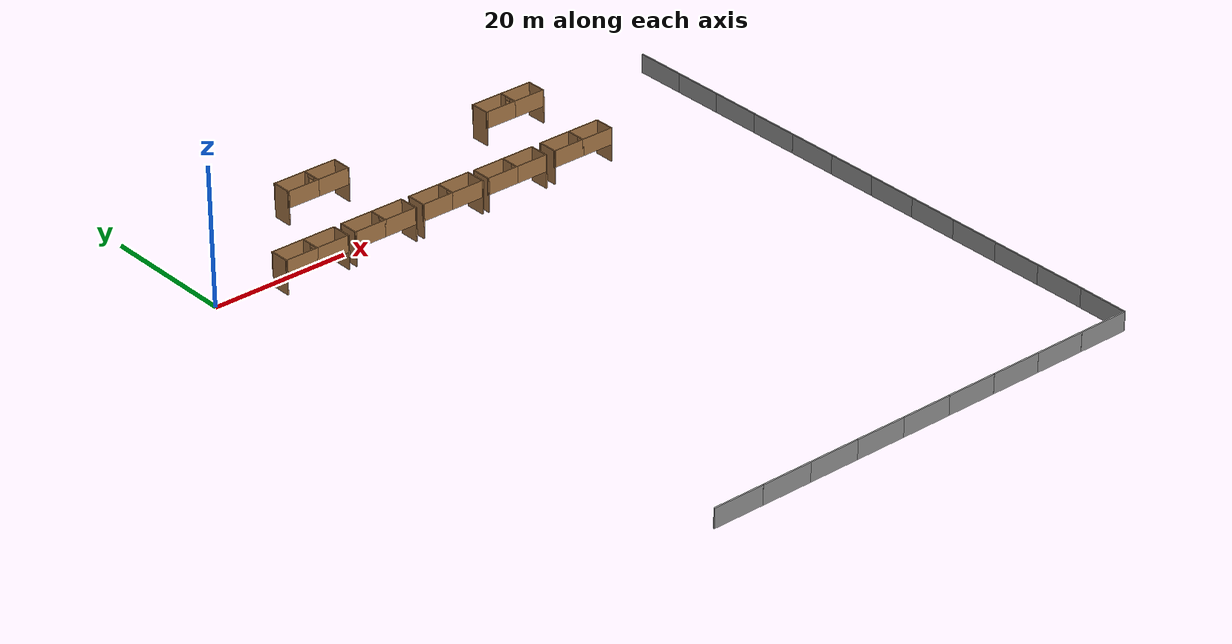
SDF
<sdf version="1.6">
 <world name="default">
  <model name="grey_wall_clone_10_clone_clone_clone_11_clone_clone_9">
   <static>1</static>
   <link name="link">
    <pose>0 0 1.4 0 -0 0</pose>
    <collision name="collision"><geometry><box><size>7.5 0.2 2.8</size></box></geometry></collision>
    <visual name="visual">
     <cast_shadows>0</cast_shadows>
     <geometry><box><size>7.5 0.2 2.8</size></box></geometry>
     <material>
      <script>
       <uri>model://forest/grey_wall/materials/scripts</uri>
       <uri>model://forest/grey_wall/materials/textures</uri>
       <name>vrc/grey_wall</name>
      </script>
     </material>
    </visual>
   </link>
   <pose>17.442 -77.2428 0 0 -0 0</pose>
  </model>
  <model name="grey_wall_clone_10_clone_clone_clone_11_clone_clone_10">
   <static>1</static>
   <link name="link">
    <pose>0 0 1.4 0 -0 0</pose>
    <collision name="collision"><geometry><box><size>7.5 0.2 2.8</size></box></geometry></collision>
    <visual name="visual">
     <cast_shadows>0</cast_shadows>
     <geometry><box><size>7.5 0.2 2.8</size></box></geometry>
     <material>
      <script>
       <uri>model://forest/grey_wall/materials/scripts</uri>
       <uri>model://forest/grey_wall/materials/textures</uri>
       <name>vrc/grey_wall</name>
      </script>
     </material>
    </visual>
   </link>
   <pose>24.9441 -77.2473 0 0 -0 0</pose>
  </model>
  <model name="grey_wall_clone_10_clone_clone_clone_11_clone_clone_11">
   <static>1</static>
   <link name="link">
    <pose>0 0 1.4 0 -0 0</pose>
    <collision name="collision"><geometry><box><size>7.5 0.2 2.8</size></box></geometry></collision>
    <visual name="visual">
     <cast_shadows>0</cast_shadows>
     <geometry><box><size>7.5 0.2 2.8</size></box></geometry>
     <material>
      <script>
       <uri>model://forest/grey_wall/materials/scripts</uri>
       <uri>model://forest/grey_wall/materials/textures</uri>
       <name>vrc/grey_wall</name>
      </script>
     </material>
    </visual>
   </link>
   <pose>32.4421 -77.2463 0 0 -0 0</pose>
  </model>
  <model name="grey_wall_clone_10_clone_clone_clone_11_clone_clone_12">
   <static>1</static>
   <link name="link">
    <pose>0 0 1.4 0 -0 0</pose>
    <collision name="collision"><geometry><box><size>7.5 0.2 2.8</size></box></geometry></collision>
    <visual name="visual">
     <cast_shadows>0</cast_shadows>
     <geometry><box><size>7.5 0.2 2.8</size></box></geometry>
     <material>
      <script>
       <uri>model://forest/grey_wall/materials/scripts</uri>
       <uri>model://forest/grey_wall/materials/textures</uri>
       <name>vrc/grey_wall</name>
      </script>
     </material>
    </visual>
   </link>
   <pose>39.9314 -77.2456 0 0 -0 0</pose>
  </model>
  <model name="grey_wall_clone_10_clone_clone_clone_11_clone_clone_13">
   <static>1</static>
   <link name="link">
    <pose>0 0 1.4 0 -0 0</pose>
    <collision name="collision"><geometry><box><size>7.5 0.2 2.8</size></box></geometry></collision>
    <visual name="visual">
     <cast_shadows>0</cast_shadows>
     <geometry><box><size>7.5 0.2 2.8</size></box></geometry>
     <material>
      <script>
       <uri>model://forest/grey_wall/materials/scripts</uri>
       <uri>model://forest/grey_wall/materials/textures</uri>
       <name>vrc/grey_wall</name>
      </script>
     </material>
    </visual>
   </link>
   <pose>47.429 -77.2489 0 0 -0 0</pose>
  </model>
  <model name="grey_wall_clone_10_clone_clone_clone_11_clone_clone_14">
   <static>1</static>
   <link name="link">
    <pose>0 0 1.4 0 -0 0</pose>
    <collision name="collision"><geometry><box><size>7.5 0.2 2.8</size></box></geometry></collision>
    <visual name="visual">
     <cast_shadows>0</cast_shadows>
     <geometry><box><size>7.5 0.2 2.8</size></box></geometry>
     <material>
      <script>
       <uri>model://forest/grey_wall/materials/scripts</uri>
       <uri>model://forest/grey_wall/materials/textures</uri>
       <name>vrc/grey_wall</name>
      </script>
     </material>
    </visual>
   </link>
   <pose>54.8935 -77.2438 0 0 -0 0</pose>
  </model>
  <model name="grey_wall_clone_10_clone_clone_clone_11_clone_clone_15">
   <static>1</static>
   <link name="link">
    <pose>0 0 1.4 0 -0 0</pose>
    <collision name="collision"><geometry><box><size>7.5 0.2 2.8</size></box></geometry></collision>
    <visual name="visual">
     <cast_shadows>0</cast_shadows>
     <geometry><box><size>7.5 0.2 2.8</size></box></geometry>
     <material>
      <script>
       <uri>model://forest/grey_wall/materials/scripts</uri>
       <uri>model://forest/grey_wall/materials/textures</uri>
       <name>vrc/grey_wall</name>
      </script>
     </material>
    </visual>
   </link>
   <pose>62.4043 -77.2429 0 0 -0 0</pose>
  </model>
  <model name="grey_wall_clone_10_clone_clone_clone_11_clone_clone_16">
   <static>1</static>
   <link name="link">
    <pose>0 0 1.4 0 -0 0</pose>
    <collision name="collision"><geometry><box><size>7.5 0.2 2.8</size></box></geometry></collision>
    <visual name="visual">
     <cast_shadows>0</cast_shadows>
     <geometry><box><size>7.5 0.2 2.8</size></box></geometry>
     <material>
      <script>
       <uri>model://forest/grey_wall/materials/scripts</uri>
       <uri>model://forest/grey_wall/materials/textures</uri>
       <name>vrc/grey_wall</name>
      </script>
     </material>
    </visual>
   </link>
   <pose>69.8968 -77.2494 0 0 -0 0</pose>
  </model>
  <model name="grey_wall_clone_10_clone_clone_clone_11_clone_clone_17">
   <static>1</static>
   <link name="link">
    <pose>0 0 1.4 0 -0 0</pose>
    <collision name="collision"><geometry><box><size>7.5 0.2 2.8</size></box></geometry></collision>
    <visual name="visual">
     <cast_shadows>0</cast_shadows>
     <geometry><box><size>7.5 0.2 2.8</size></box></geometry>
     <material>
      <script>
       <uri>model://forest/grey_wall/materials/scripts</uri>
       <uri>model://forest/grey_wall/materials/textures</uri>
       <name>vrc/grey_wall</name>
      </script>
     </material>
    </visual>
   </link>
   <pose>77.4066 -77.2521 0 0 -0 0</pose>
  </model>
  <model name="grey_wall_clone_10_clone_0_clone_11_clone">
   <static>1</static>
   <link name="link">
    <pose>0 0 1.4 0 -0 0</pose>
    <collision name="collision"><geometry><box><size>7.5 0.2 2.8</size></box></geometry></collision>
    <visual name="visual">
     <cast_shadows>0</cast_shadows>
     <geometry><box><size>7.5 0.2 2.8</size></box></geometry>
     <material>
      <script>
       <uri>model://forest/grey_wall/materials/scripts</uri>
       <uri>model://forest/grey_wall/materials/textures</uri>
       <name>vrc/grey_wall</name>
      </script>
     </material>
    </visual>
   </link>
   <pose>81.2442 -73.5802 0 0 0 -1.5802</pose>
  </model>
  <model name="grey_wall_clone_10_clone_0_clone_10_clone">
   <static>1</static>
   <link name="link">
    <pose>0 0 1.4 0 -0 0</pose>
    <collision name="collision"><geometry><box><size>7.5 0.2 2.8</size></box></geometry></collision>
    <visual name="visual">
     <cast_shadows>0</cast_shadows>
     <geometry><box><size>7.5 0.2 2.8</size></box></geometry>
     <material>
      <script>
       <uri>model://forest/grey_wall/materials/scripts</uri>
       <uri>model://forest/grey_wall/materials/textures</uri>
       <name>vrc/grey_wall</name>
      </script>
     </material>
    </visual>
   </link>
   <pose>81.3001 -66.0858 0 0 0 -1.56932</pose>
  </model>
  <model name="grey_wall_clone_10_clone_0_clone_9_clone">
   <static>1</static>
   <link name="link">
    <pose>0 0 1.4 0 -0 0</pose>
    <collision name="collision"><geometry><box><size>7.5 0.2 2.8</size></box></geometry></collision>
    <visual name="visual">
     <cast_shadows>0</cast_shadows>
     <geometry><box><size>7.5 0.2 2.8</size></box></geometry>
     <material>
      <script>
       <uri>model://forest/grey_wall/materials/scripts</uri>
       <uri>model://forest/grey_wall/materials/textures</uri>
       <name>vrc/grey_wall</name>
      </script>
     </material>
    </visual>
   </link>
   <pose>81.2777 -58.6142 0 0 0 -1.56932</pose>
  </model>
  <model name="grey_wall_clone_10_clone_0_clone_8_clone">
   <static>1</static>
   <link name="link">
    <pose>0 0 1.4 0 -0 0</pose>
    <collision name="collision"><geometry><box><size>7.5 0.2 2.8</size></box></geometry></collision>
    <visual name="visual">
     <cast_shadows>0</cast_shadows>
     <geometry><box><size>7.5 0.2 2.8</size></box></geometry>
     <material>
      <script>
       <uri>model://forest/grey_wall/materials/scripts</uri>
       <uri>model://forest/grey_wall/materials/textures</uri>
       <name>vrc/grey_wall</name>
      </script>
     </material>
    </visual>
   </link>
   <pose>81.2777 -51.1177 0 0 0 -1.56932</pose>
  </model>
  <model name="grey_wall_clone_10_clone_0_clone_7_clone">
   <static>1</static>
   <link name="link">
    <pose>0 0 1.4 0 -0 0</pose>
    <collision name="collision"><geometry><box><size>7.5 0.2 2.8</size></box></geometry></collision>
    <visual name="visual">
     <cast_shadows>0</cast_shadows>
     <geometry><box><size>7.5 0.2 2.8</size></box></geometry>
     <material>
      <script>
       <uri>model://forest/grey_wall/materials/scripts</uri>
       <uri>model://forest/grey_wall/materials/textures</uri>
       <name>vrc/grey_wall</name>
      </script>
     </material>
    </visual>
   </link>
   <pose>81.2788 -43.6064 0 0 0 -1.56932</pose>
  </model>
  <model name="grey_wall_clone_10_clone_0_clone_6_clone">
   <static>1</static>
   <link name="link">
    <pose>0 0 1.4 0 -0 0</pose>
    <collision name="collision"><geometry><box><size>7.5 0.2 2.8</size></box></geometry></collision>
    <visual name="visual">
     <cast_shadows>0</cast_shadows>
     <geometry><box><size>7.5 0.2 2.8</size></box></geometry>
     <material>
      <script>
       <uri>model://forest/grey_wall/materials/scripts</uri>
       <uri>model://forest/grey_wall/materials/textures</uri>
       <name>vrc/grey_wall</name>
      </script>
     </material>
    </visual>
   </link>
   <pose>81.2767 -36.0958 0 0 0 -1.56932</pose>
  </model>
  <model name="grey_wall_clone_10_clone_0_clone_5_clone_13">
   <static>1</static>
   <link name="link">
    <pose>0 0 1.4 0 -0 0</pose>
    <collision name="collision"><geometry><box><size>7.5 0.2 2.8</size></box></geometry></collision>
    <visual name="visual">
     <cast_shadows>0</cast_shadows>
     <geometry><box><size>7.5 0.2 2.8</size></box></geometry>
     <material>
      <script>
       <uri>model://forest/grey_wall/materials/scripts</uri>
       <uri>model://forest/grey_wall/materials/textures</uri>
       <name>vrc/grey_wall</name>
      </script>
     </material>
    </visual>
   </link>
   <pose>81.2728 -28.5811 0 0 0 -1.56932</pose>
  </model>
  <model name="grey_wall_clone_10_clone_0_clone_4_clone">
   <static>1</static>
   <link name="link">
    <pose>0 0 1.4 0 -0 0</pose>
    <collision name="collision"><geometry><box><size>7.5 0.2 2.8</size></box></geometry></collision>
    <visual name="visual">
     <cast_shadows>0</cast_shadows>
     <geometry><box><size>7.5 0.2 2.8</size></box></geometry>
     <material>
      <script>
       <uri>model://forest/grey_wall/materials/scripts</uri>
       <uri>model://forest/grey_wall/materials/textures</uri>
       <name>vrc/grey_wall</name>
      </script>
     </material>
    </visual>
   </link>
   <pose>81.2736 -21.0806 0 0 0 -1.56932</pose>
  </model>
  <model name="grey_wall_clone_10_clone_0_clone_3_clone">
   <static>1</static>
   <link name="link">
    <pose>0 0 1.4 0 -0 0</pose>
    <collision name="collision"><geometry><box><size>7.5 0.2 2.8</size></box></geometry></collision>
    <visual name="visual">
     <cast_shadows>0</cast_shadows>
     <geometry><box><size>7.5 0.2 2.8</size></box></geometry>
     <material>
      <script>
       <uri>model://forest/grey_wall/materials/scripts</uri>
       <uri>model://forest/grey_wall/materials/textures</uri>
       <name>vrc/grey_wall</name>
      </script>
     </material>
    </visual>
   </link>
   <pose>81.2554 -13.5842 0 0 0 -1.56932</pose>
  </model>
  <model name="grey_wall_clone_10_clone_0_clone_2_clone">
   <static>1</static>
   <link name="link">
    <pose>0 0 1.4 0 -0 0</pose>
    <collision name="collision"><geometry><box><size>7.5 0.2 2.8</size></box></geometry></collision>
    <visual name="visual">
     <cast_shadows>0</cast_shadows>
     <geometry><box><size>7.5 0.2 2.8</size></box></geometry>
     <material>
      <script>
       <uri>model://forest/grey_wall/materials/scripts</uri>
       <uri>model://forest/grey_wall/materials/textures</uri>
       <name>vrc/grey_wall</name>
      </script>
     </material>
    </visual>
   </link>
   <pose>81.262 -6.06923 0 0 0 -1.56932</pose>
  </model>
  <model name="grey_wall_clone_10_clone_0_clone_1_clone">
   <static>1</static>
   <link name="link">
    <pose>0 0 1.4 0 -0 0</pose>
    <collision name="collision"><geometry><box><size>7.5 0.2 2.8</size></box></geometry></collision>
    <visual name="visual">
     <cast_shadows>0</cast_shadows>
     <geometry><box><size>7.5 0.2 2.8</size></box></geometry>
     <material>
      <script>
       <uri>model://forest/grey_wall/materials/scripts</uri>
       <uri>model://forest/grey_wall/materials/textures</uri>
       <name>vrc/grey_wall</name>
      </script>
     </material>
    </visual>
   </link>
   <pose>81.2538 1.43804 0 0 0 -1.56932</pose>
  </model>
  <model name="grey_wall_clone_10_clone_0_clone_0_clone">
   <static>1</static>
   <link name="link">
    <pose>0 0 1.4 0 -0 0</pose>
    <collision name="collision"><geometry><box><size>7.5 0.2 2.8</size></box></geometry></collision>
    <visual name="visual">
     <cast_shadows>0</cast_shadows>
     <geometry><box><size>7.5 0.2 2.8</size></box></geometry>
     <material>
      <script>
       <uri>model://forest/grey_wall/materials/scripts</uri>
       <uri>model://forest/grey_wall/materials/textures</uri>
       <name>vrc/grey_wall</name>
      </script>
     </material>
    </visual>
   </link>
   <pose>81.2487 8.94341 0 0 0 -1.56932</pose>
  </model>
  <model name="right130_0">
   <pose>15.9595 1.93202 0 0 -0 0</pose>
   <link name="Wall_11">
    <collision name="Wall_11_Collision">
     <geometry><box><size>5 0.15 2.5</size></box></geometry>
     <pose>0 0 1.25 0 -0 0</pose>
    </collision>
    <visual name="Wall_11_Visual">
     <pose>0 0 1.25 0 -0 0</pose>
     <geometry><box><size>5 0.15 2.5</size></box></geometry>
     <material>
      <script><uri>file://media/materials/scripts/gazebo.material</uri><name>Gazebo/Wood</name></script>
      <ambient>1 1 1 1</ambient>
     </material>
     <meta><layer>0</layer></meta>
    </visual>
    <pose>-2.425 -1.83058 0 0 -0 3.14159</pose>
   </link>
   <link name="Wall_5">
    <collision name="Wall_5_Collision">
     <geometry><box><size>5 0.15 2.5</size></box></geometry>
     <pose>0 0 1.25 0 -0 0</pose>
    </collision>
    <visual name="Wall_5_Visual">
     <pose>0 0 1.25 0 -0 0</pose>
     <geometry><box><size>5 0.15 2.5</size></box></geometry>
     <material>
      <script><uri>file://media/materials/scripts/gazebo.material</uri><name>Gazebo/Wood</name></script>
      <ambient>1 1 1 1</ambient>
     </material>
     <meta><layer>0</layer></meta>
    </visual>
    <pose>-2.425 1.01942 0 0 -0 0</pose>
   </link>
   <link name="Wall_6">
    <pose>0 -0.405576 0 0 -0 -1.5708</pose>
    <visual name="Wall_6_Visual_0">
     <pose>-0.7275 0 1.25 0 -0 0</pose>
     <geometry><box><size>1.545 0.15 2.5</size></box></geometry>
     <material>
      <script><uri>file://media/materials/scripts/gazebo.material</uri><name>Gazebo/Wood</name></script>
      <ambient>1 1 1 1</ambient>
     </material>
     <meta><layer>0</layer></meta>
    </visual>
    <collision name="Wall_6_Collision_0">
     <geometry><box><size>1.545 0.15 2.5</size></box></geometry>
     <pose>-0.7275 0 1.25 0 -0 0</pose>
    </collision>
    <visual name="Wall_6_Visual_1">
     <pose>1.4225 0 1.25 0 -0 0</pose>
     <geometry><box><size>0.155 0.15 2.5</size></box></geometry>
     <material>
      <script><uri>file://media/materials/scripts/gazebo.material</uri><name>Gazebo/Wood</name></script>
      <ambient>1 1 1 1</ambient>
     </material>
     <meta><layer>0</layer></meta>
    </visual>
    <collision name="Wall_6_Collision_1">
     <geometry><box><size>0.155 0.15 2.5</size></box></geometry>
     <pose>1.4225 0 1.25 0 -0 0</pose>
    </collision>
    <visual name="Wall_6_Visual_2">
     <pose>0.695 0 2.25 0 -0 0</pose>
     <geometry><box><size>1.3 0.15 0.5</size></box></geometry>
     <material>
      <script><uri>file://media/materials/scripts/gazebo.material</uri><name>Gazebo/Wood</name></script>
      <ambient>1 1 1 1</ambient>
     </material>
     <meta><layer>0</layer></meta>
    </visual>
    <collision name="Wall_6_Collision_2">
     <geometry><box><size>1.3 0.15 0.5</size></box></geometry>
     <pose>0.695 0 2.25 0 -0 0</pose>
    </collision>
   </link>
   <link name="Wall_7">
    <collision name="Wall_7_Collision">
     <geometry><box><size>5 0.15 2.5</size></box></geometry>
     <pose>0 0 1.25 0 -0 0</pose>
    </collision>
    <visual name="Wall_7_Visual">
     <pose>0 0 1.25 0 -0 0</pose>
     <geometry><box><size>5 0.15 2.5</size></box></geometry>
     <material>
      <script><uri>file://media/materials/scripts/gazebo.material</uri><name>Gazebo/Wood</name></script>
      <ambient>1 1 1 1</ambient>
     </material>
     <meta><layer>0</layer></meta>
    </visual>
    <pose>2.425 -1.83058 0 0 -0 0</pose>
   </link>
   <link name="Wall_9">
    <collision name="Wall_9_Collision">
     <geometry><box><size>5 0.15 2.5</size></box></geometry>
     <pose>0 0 1.25 0 -0 0</pose>
    </collision>
    <visual name="Wall_9_Visual">
     <pose>0 0 1.25 0 -0 0</pose>
     <geometry><box><size>5 0.15 2.5</size></box></geometry>
     <material>
      <script><uri>file://media/materials/scripts/gazebo.material</uri><name>Gazebo/Wood</name></script>
      <ambient>1 1 1 1</ambient>
     </material>
     <meta><layer>0</layer></meta>
    </visual>
    <pose>2.425 1.01942 0 0 -0 0</pose>
   </link>
   <link name="Wall_10">
    <collision name="Wall_10_Collision">
     <geometry><box><size>0.15 3 5</size></box></geometry>
     <pose>-7.25 -1.5 0 0 -0 0</pose>
    </collision>
    <visual name="Wall_10_Visual">
     <pose>-7.25 -1.5 0 0 -0 0</pose>
     <geometry><box><size>0.15 3 5</size></box></geometry>
     <material>
      <script><uri>file://media/materials/scripts/gazebo.material</uri><name>Gazebo/Wood</name></script>
      <ambient>1 1 1 1</ambient>
     </material>
     <meta><layer>0</layer></meta>
    </visual>
    <pose>2.425 1.01942 0 0 -0 0</pose>
   </link>
   <link name="Wall_12">
    <collision name="Wall_12_Collision">
     <geometry><box><size>0.15 3 5</size></box></geometry>
     <pose>2.5 -1.5 0 0 -0 0</pose>
    </collision>
    <visual name="Wall_12_Visual">
     <pose>2.5 -1.5 0 0 -0 0</pose>
     <geometry><box><size>0.15 3 5</size></box></geometry>
     <material>
      <script><uri>file://media/materials/scripts/gazebo.material</uri><name>Gazebo/Wood</name></script>
      <ambient>1 1 1 1</ambient>
     </material>
     <meta><layer>0</layer></meta>
    </visual>
    <pose>2.425 1.01942 0 0 -0 0</pose>
   </link>
   <static>1</static>
  </model>
  <model name="right120_0">
   <pose>26.8992 1.96176 0 0 -0 0</pose>
   <link name="Wall_11">
    <collision name="Wall_11_Collision">
     <geometry><box><size>5 0.15 2.5</size></box></geometry>
     <pose>0 0 1.25 0 -0 0</pose>
    </collision>
    <visual name="Wall_11_Visual">
     <pose>0 0 1.25 0 -0 0</pose>
     <geometry><box><size>5 0.15 2.5</size></box></geometry>
     <material>
      <script><uri>file://media/materials/scripts/gazebo.material</uri><name>Gazebo/Wood</name></script>
      <ambient>1 1 1 1</ambient>
     </material>
     <meta><layer>0</layer></meta>
    </visual>
    <pose>-2.425 -1.83058 0 0 -0 3.14159</pose>
   </link>
   <link name="Wall_5">
    <collision name="Wall_5_Collision">
     <geometry><box><size>5 0.15 2.5</size></box></geometry>
     <pose>0 0 1.25 0 -0 0</pose>
    </collision>
    <visual name="Wall_5_Visual">
     <pose>0 0 1.25 0 -0 0</pose>
     <geometry><box><size>5 0.15 2.5</size></box></geometry>
     <material>
      <script><uri>file://media/materials/scripts/gazebo.material</uri><name>Gazebo/Wood</name></script>
      <ambient>1 1 1 1</ambient>
     </material>
     <meta><layer>0</layer></meta>
    </visual>
    <pose>-2.425 1.01942 0 0 -0 0</pose>
   </link>
   <link name="Wall_6">
    <pose>0 -0.405576 0 0 -0 -1.5708</pose>
    <visual name="Wall_6_Visual_0">
     <pose>-0.6725 0 1.25 0 -0 0</pose>
     <geometry><box><size>1.655 0.15 2.5</size></box></geometry>
     <material>
      <script><uri>file://media/materials/scripts/gazebo.material</uri><name>Gazebo/Wood</name></script>
      <ambient>1 1 1 1</ambient>
     </material>
     <meta><layer>0</layer></meta>
    </visual>
    <collision name="Wall_6_Collision_0">
     <geometry><box><size>1.655 0.15 2.5</size></box></geometry>
     <pose>-0.6725 0 1.25 0 -0 0</pose>
    </collision>
    <visual name="Wall_6_Visual_1">
     <pose>1.4275 0 1.25 0 -0 0</pose>
     <geometry><box><size>0.145 0.15 2.5</size></box></geometry>
     <material>
      <script><uri>file://media/materials/scripts/gazebo.material</uri><name>Gazebo/Wood</name></script>
      <ambient>1 1 1 1</ambient>
     </material>
     <meta><layer>0</layer></meta>
    </visual>
    <collision name="Wall_6_Collision_1">
     <geometry><box><size>0.145 0.15 2.5</size></box></geometry>
     <pose>1.4275 0 1.25 0 -0 0</pose>
    </collision>
    <visual name="Wall_6_Visual_2">
     <pose>0.755 0 2.25 0 -0 0</pose>
     <geometry><box><size>1.2 0.15 0.5</size></box></geometry>
     <material>
      <script><uri>file://media/materials/scripts/gazebo.material</uri><name>Gazebo/Wood</name></script>
      <ambient>1 1 1 1</ambient>
     </material>
     <meta><layer>0</layer></meta>
    </visual>
    <collision name="Wall_6_Collision_2">
     <geometry><box><size>1.2 0.15 0.5</size></box></geometry>
     <pose>0.755 0 2.25 0 -0 0</pose>
    </collision>
   </link>
   <link name="Wall_7">
    <collision name="Wall_7_Collision">
     <geometry><box><size>5 0.15 2.5</size></box></geometry>
     <pose>0 0 1.25 0 -0 0</pose>
    </collision>
    <visual name="Wall_7_Visual">
     <pose>0 0 1.25 0 -0 0</pose>
     <geometry><box><size>5 0.15 2.5</size></box></geometry>
     <material>
      <script><uri>file://media/materials/scripts/gazebo.material</uri><name>Gazebo/Wood</name></script>
      <ambient>1 1 1 1</ambient>
     </material>
     <meta><layer>0</layer></meta>
    </visual>
    <pose>2.425 -1.83058 0 0 -0 0</pose>
   </link>
   <link name="Wall_9">
    <collision name="Wall_9_Collision">
     <geometry><box><size>5 0.15 2.5</size></box></geometry>
     <pose>0 0 1.25 0 -0 0</pose>
    </collision>
    <visual name="Wall_9_Visual">
     <pose>0 0 1.25 0 -0 0</pose>
     <geometry><box><size>5 0.15 2.5</size></box></geometry>
     <material>
      <script><uri>file://media/materials/scripts/gazebo.material</uri><name>Gazebo/Wood</name></script>
      <ambient>1 1 1 1</ambient>
     </material>
     <meta><layer>0</layer></meta>
    </visual>
    <pose>2.425 1.01942 0 0 -0 0</pose>
   </link>
   <link name="Wall_10">
    <collision name="Wall_10_Collision">
     <geometry><box><size>0.15 3 5</size></box></geometry>
     <pose>-7.25 -1.5 0 0 -0 0</pose>
    </collision>
    <visual name="Wall_10_Visual">
     <pose>-7.25 -1.5 0 0 -0 0</pose>
     <geometry><box><size>0.15 3 5</size></box></geometry>
     <material>
      <script><uri>file://media/materials/scripts/gazebo.material</uri><name>Gazebo/Wood</name></script>
      <ambient>1 1 1 1</ambient>
     </material>
     <meta><layer>0</layer></meta>
    </visual>
    <pose>2.425 1.01942 0 0 -0 0</pose>
   </link>
   <link name="Wall_12">
    <collision name="Wall_12_Collision">
     <geometry><box><size>0.15 3 5</size></box></geometry>
     <pose>2.5 -1.5 0 0 -0 0</pose>
    </collision>
    <visual name="Wall_12_Visual">
     <pose>2.5 -1.5 0 0 -0 0</pose>
     <geometry><box><size>0.15 3 5</size></box></geometry>
     <material>
      <script><uri>file://media/materials/scripts/gazebo.material</uri><name>Gazebo/Wood</name></script>
      <ambient>1 1 1 1</ambient>
     </material>
     <meta><layer>0</layer></meta>
    </visual>
    <pose>2.425 1.01942 0 0 -0 0</pose>
   </link>
   <static>1</static>
  </model>
  <model name="right110_0">
   <pose>37.8416 1.89566 0 0 -0 0</pose>
   <link name="Wall_11">
    <collision name="Wall_11_Collision">
     <geometry><box><size>5 0.15 2.5</size></box></geometry>
     <pose>0 0 1.25 0 -0 0</pose>
    </collision>
    <visual name="Wall_11_Visual">
     <pose>0 0 1.25 0 -0 0</pose>
     <geometry><box><size>5 0.15 2.5</size></box></geometry>
     <material>
      <script><uri>file://media/materials/scripts/gazebo.material</uri><name>Gazebo/Wood</name></script>
      <ambient>1 1 1 1</ambient>
     </material>
     <meta><layer>0</layer></meta>
    </visual>
    <pose>-2.425 -1.83058 0 0 -0 3.14159</pose>
   </link>
   <link name="Wall_5">
    <collision name="Wall_5_Collision">
     <geometry><box><size>5 0.15 2.5</size></box></geometry>
     <pose>0 0 1.25 0 -0 0</pose>
    </collision>
    <visual name="Wall_5_Visual">
     <pose>0 0 1.25 0 -0 0</pose>
     <geometry><box><size>5 0.15 2.5</size></box></geometry>
     <material>
      <script><uri>file://media/materials/scripts/gazebo.material</uri><name>Gazebo/Wood</name></script>
      <ambient>1 1 1 1</ambient>
     </material>
     <meta><layer>0</layer></meta>
    </visual>
    <pose>-2.425 1.01942 0 0 -0 0</pose>
   </link>
   <link name="Wall_6">
    <pose>0 -0.405576 0 0 -0 -1.5708</pose>
    <visual name="Wall_6_Visual_0">
     <pose>-0.6225 0 1.25 0 -0 0</pose>
     <geometry><box><size>1.755 0.15 2.5</size></box></geometry>
     <material>
      <script><uri>file://media/materials/scripts/gazebo.material</uri><name>Gazebo/Wood</name></script>
      <ambient>1 1 1 1</ambient>
     </material>
     <meta><layer>0</layer></meta>
    </visual>
    <collision name="Wall_6_Collision_0">
     <geometry><box><size>1.755 0.15 2.5</size></box></geometry>
     <pose>-0.6225 0 1.25 0 -0 0</pose>
    </collision>
    <visual name="Wall_6_Visual_1">
     <pose>1.4275 0 1.25 0 -0 0</pose>
     <geometry><box><size>0.145 0.15 2.5</size></box></geometry>
     <material>
      <script><uri>file://media/materials/scripts/gazebo.material</uri><name>Gazebo/Wood</name></script>
      <ambient>1 1 1 1</ambient>
     </material>
     <meta><layer>0</layer></meta>
    </visual>
    <collision name="Wall_6_Collision_1">
     <geometry><box><size>0.145 0.15 2.5</size></box></geometry>
     <pose>1.4275 0 1.25 0 -0 0</pose>
    </collision>
    <visual name="Wall_6_Visual_2">
     <pose>0.805 0 2.25 0 -0 0</pose>
     <geometry><box><size>1.1 0.15 0.5</size></box></geometry>
     <material>
      <script><uri>file://media/materials/scripts/gazebo.material</uri><name>Gazebo/Wood</name></script>
      <ambient>1 1 1 1</ambient>
     </material>
     <meta><layer>0</layer></meta>
    </visual>
    <collision name="Wall_6_Collision_2">
     <geometry><box><size>1.1 0.15 0.5</size></box></geometry>
     <pose>0.805 0 2.25 0 -0 0</pose>
    </collision>
   </link>
   <link name="Wall_7">
    <collision name="Wall_7_Collision">
     <geometry><box><size>5 0.15 2.5</size></box></geometry>
     <pose>0 0 1.25 0 -0 0</pose>
    </collision>
    <visual name="Wall_7_Visual">
     <pose>0 0 1.25 0 -0 0</pose>
     <geometry><box><size>5 0.15 2.5</size></box></geometry>
     <material>
      <script><uri>file://media/materials/scripts/gazebo.material</uri><name>Gazebo/Wood</name></script>
      <ambient>1 1 1 1</ambient>
     </material>
     <meta><layer>0</layer></meta>
    </visual>
    <pose>2.425 -1.83058 0 0 -0 0</pose>
   </link>
   <link name="Wall_9">
    <collision name="Wall_9_Collision">
     <geometry><box><size>5 0.15 2.5</size></box></geometry>
     <pose>0 0 1.25 0 -0 0</pose>
    </collision>
    <visual name="Wall_9_Visual">
     <pose>0 0 1.25 0 -0 0</pose>
     <geometry><box><size>5 0.15 2.5</size></box></geometry>
     <material>
      <script><uri>file://media/materials/scripts/gazebo.material</uri><name>Gazebo/Wood</name></script>
      <ambient>1 1 1 1</ambient>
     </material>
     <meta><layer>0</layer></meta>
    </visual>
    <pose>2.425 1.01942 0 0 -0 0</pose>
   </link>
   <link name="Wall_10">
    <collision name="Wall_10_Collision">
     <geometry><box><size>0.15 3 5</size></box></geometry>
     <pose>-7.25 -1.5 0 0 -0 0</pose>
    </collision>
    <visual name="Wall_10_Visual">
     <pose>-7.25 -1.5 0 0 -0 0</pose>
     <geometry><box><size>0.15 3 5</size></box></geometry>
     <material>
      <script><uri>file://media/materials/scripts/gazebo.material</uri><name>Gazebo/Wood</name></script>
      <ambient>1 1 1 1</ambient>
     </material>
     <meta><layer>0</layer></meta>
    </visual>
    <pose>2.425 1.01942 0 0 -0 0</pose>
   </link>
   <link name="Wall_12">
    <collision name="Wall_12_Collision">
     <geometry><box><size>0.15 3 5</size></box></geometry>
     <pose>2.5 -1.5 0 0 -0 0</pose>
    </collision>
    <visual name="Wall_12_Visual">
     <pose>2.5 -1.5 0 0 -0 0</pose>
     <geometry><box><size>0.15 3 5</size></box></geometry>
     <material>
      <script><uri>file://media/materials/scripts/gazebo.material</uri><name>Gazebo/Wood</name></script>
      <ambient>1 1 1 1</ambient>
     </material>
     <meta><layer>0</layer></meta>
    </visual>
    <pose>2.425 1.01942 0 0 -0 0</pose>
   </link>
   <static>1</static>
  </model>
  <model name="right100_0">
   <pose>48.5022 1.81261 0 0 -0 0</pose>
   <link name="Wall_11">
    <collision name="Wall_11_Collision">
     <geometry><box><size>5 0.15 2.5</size></box></geometry>
     <pose>0 0 1.25 0 -0 0</pose>
    </collision>
    <visual name="Wall_11_Visual">
     <pose>0 0 1.25 0 -0 0</pose>
     <geometry><box><size>5 0.15 2.5</size></box></geometry>
     <material>
      <script><uri>file://media/materials/scripts/gazebo.material</uri><name>Gazebo/Wood</name></script>
      <ambient>1 1 1 1</ambient>
     </material>
     <meta><layer>0</layer></meta>
    </visual>
    <pose>-2.425 -1.83058 0 0 -0 3.14159</pose>
   </link>
   <link name="Wall_5">
    <collision name="Wall_5_Collision">
     <geometry><box><size>5 0.15 2.5</size></box></geometry>
     <pose>0 0 1.25 0 -0 0</pose>
    </collision>
    <visual name="Wall_5_Visual">
     <pose>0 0 1.25 0 -0 0</pose>
     <geometry><box><size>5 0.15 2.5</size></box></geometry>
     <material>
      <script><uri>file://media/materials/scripts/gazebo.material</uri><name>Gazebo/Wood</name></script>
      <ambient>1 1 1 1</ambient>
     </material>
     <meta><layer>0</layer></meta>
    </visual>
    <pose>-2.425 1.01942 0 0 -0 0</pose>
   </link>
   <link name="Wall_6">
    <pose>0 -0.405576 0 0 -0 -1.5708</pose>
    <visual name="Wall_6_Visual_0">
     <pose>-0.5725 0 1.25 0 -0 0</pose>
     <geometry><box><size>1.855 0.15 2.5</size></box></geometry>
     <material>
      <script><uri>file://media/materials/scripts/gazebo.material</uri><name>Gazebo/Wood</name></script>
      <ambient>1 1 1 1</ambient>
     </material>
     <meta><layer>0</layer></meta>
    </visual>
    <collision name="Wall_6_Collision_0">
     <geometry><box><size>1.855 0.15 2.5</size></box></geometry>
     <pose>-0.5725 0 1.25 0 -0 0</pose>
    </collision>
    <visual name="Wall_6_Visual_1">
     <pose>1.4275 0 1.25 0 -0 0</pose>
     <geometry><box><size>0.145 0.15 2.5</size></box></geometry>
     <material>
      <script><uri>file://media/materials/scripts/gazebo.material</uri><name>Gazebo/Wood</name></script>
      <ambient>1 1 1 1</ambient>
     </material>
     <meta><layer>0</layer></meta>
    </visual>
    <collision name="Wall_6_Collision_1">
     <geometry><box><size>0.145 0.15 2.5</size></box></geometry>
     <pose>1.4275 0 1.25 0 -0 0</pose>
    </collision>
    <visual name="Wall_6_Visual_2">
     <pose>0.855 0 2.25 0 -0 0</pose>
     <geometry><box><size>1 0.15 0.5</size></box></geometry>
     <material>
      <script><uri>file://media/materials/scripts/gazebo.material</uri><name>Gazebo/Wood</name></script>
      <ambient>1 1 1 1</ambient>
     </material>
     <meta><layer>0</layer></meta>
    </visual>
    <collision name="Wall_6_Collision_2">
     <geometry><box><size>1 0.15 0.5</size></box></geometry>
     <pose>0.855 0 2.25 0 -0 0</pose>
    </collision>
   </link>
   <link name="Wall_7">
    <collision name="Wall_7_Collision">
     <geometry><box><size>5 0.15 2.5</size></box></geometry>
     <pose>0 0 1.25 0 -0 0</pose>
    </collision>
    <visual name="Wall_7_Visual">
     <pose>0 0 1.25 0 -0 0</pose>
     <geometry><box><size>5 0.15 2.5</size></box></geometry>
     <material>
      <script><uri>file://media/materials/scripts/gazebo.material</uri><name>Gazebo/Wood</name></script>
      <ambient>1 1 1 1</ambient>
     </material>
     <meta><layer>0</layer></meta>
    </visual>
    <pose>2.425 -1.83058 0 0 -0 0</pose>
   </link>
   <link name="Wall_9">
    <collision name="Wall_9_Collision">
     <geometry><box><size>5 0.15 2.5</size></box></geometry>
     <pose>0 0 1.25 0 -0 0</pose>
    </collision>
    <visual name="Wall_9_Visual">
     <pose>0 0 1.25 0 -0 0</pose>
     <geometry><box><size>5 0.15 2.5</size></box></geometry>
     <material>
      <script><uri>file://media/materials/scripts/gazebo.material</uri><name>Gazebo/Wood</name></script>
      <ambient>1 1 1 1</ambient>
     </material>
     <meta><layer>0</layer></meta>
    </visual>
    <pose>2.425 1.01942 0 0 -0 0</pose>
   </link>
   <link name="Wall_10">
    <collision name="Wall_10_Collision">
     <geometry><box><size>0.15 3 5</size></box></geometry>
     <pose>-7.25 -1.5 0 0 -0 0</pose>
    </collision>
    <visual name="Wall_10_Visual">
     <pose>-7.25 -1.5 0 0 -0 0</pose>
     <geometry><box><size>0.15 3 5</size></box></geometry>
     <material>
      <script><uri>file://media/materials/scripts/gazebo.material</uri><name>Gazebo/Wood</name></script>
      <ambient>1 1 1 1</ambient>
     </material>
     <meta><layer>0</layer></meta>
    </visual>
    <pose>2.425 1.01942 0 0 -0 0</pose>
   </link>
   <link name="Wall_12">
    <collision name="Wall_12_Collision">
     <geometry><box><size>0.15 3 5</size></box></geometry>
     <pose>2.5 -1.5 0 0 -0 0</pose>
    </collision>
    <visual name="Wall_12_Visual">
     <pose>2.5 -1.5 0 0 -0 0</pose>
     <geometry><box><size>0.15 3 5</size></box></geometry>
     <material>
      <script><uri>file://media/materials/scripts/gazebo.material</uri><name>Gazebo/Wood</name></script>
      <ambient>1 1 1 1</ambient>
     </material>
     <meta><layer>0</layer></meta>
    </visual>
    <pose>2.425 1.01942 0 0 -0 0</pose>
   </link>
   <static>1</static>
  </model>
  <model name="right090_0">
   <pose>59.7829 1.857 0 0 -0 0</pose>
   <link name="Wall_11">
    <collision name="Wall_11_Collision">
     <geometry><box><size>5 0.15 2.5</size></box></geometry>
     <pose>0 0 1.25 0 -0 0</pose>
    </collision>
    <visual name="Wall_11_Visual">
     <pose>0 0 1.25 0 -0 0</pose>
     <geometry><box><size>5 0.15 2.5</size></box></geometry>
     <material>
      <script><uri>file://media/materials/scripts/gazebo.material</uri><name>Gazebo/Wood</name></script>
      <ambient>1 1 1 1</ambient>
     </material>
     <meta><layer>0</layer></meta>
    </visual>
    <pose>-2.425 -1.83058 0 0 -0 3.14159</pose>
   </link>
   <link name="Wall_5">
    <collision name="Wall_5_Collision">
     <geometry><box><size>5 0.15 2.5</size></box></geometry>
     <pose>0 0 1.25 0 -0 0</pose>
    </collision>
    <visual name="Wall_5_Visual">
     <pose>0 0 1.25 0 -0 0</pose>
     <geometry><box><size>5 0.15 2.5</size></box></geometry>
     <material>
      <script><uri>file://media/materials/scripts/gazebo.material</uri><name>Gazebo/Wood</name></script>
      <ambient>1 1 1 1</ambient>
     </material>
     <meta><layer>0</layer></meta>
    </visual>
    <pose>-2.425 1.01942 0 0 -0 0</pose>
   </link>
   <link name="Wall_6">
    <pose>0 -0.405576 0 0 -0 -1.5708</pose>
    <visual name="Wall_6_Visual_0">
     <pose>-0.5225 0 1.25 0 -0 0</pose>
     <geometry><box><size>1.955 0.15 2.5</size></box></geometry>
     <material>
      <script><uri>file://media/materials/scripts/gazebo.material</uri><name>Gazebo/Wood</name></script>
      <ambient>1 1 1 1</ambient>
     </material>
     <meta><layer>0</layer></meta>
    </visual>
    <collision name="Wall_6_Collision_0">
     <geometry><box><size>1.955 0.15 2.5</size></box></geometry>
     <pose>-0.5225 0 1.25 0 -0 0</pose>
    </collision>
    <visual name="Wall_6_Visual_1">
     <pose>1.4275 0 1.25 0 -0 0</pose>
     <geometry><box><size>0.145 0.15 2.5</size></box></geometry>
     <material>
      <script><uri>file://media/materials/scripts/gazebo.material</uri><name>Gazebo/Wood</name></script>
      <ambient>1 1 1 1</ambient>
     </material>
     <meta><layer>0</layer></meta>
    </visual>
    <collision name="Wall_6_Collision_1">
     <geometry><box><size>0.145 0.15 2.5</size></box></geometry>
     <pose>1.4275 0 1.25 0 -0 0</pose>
    </collision>
    <visual name="Wall_6_Visual_2">
     <pose>0.905 0 2.25 0 -0 0</pose>
     <geometry><box><size>0.9 0.15 0.5</size></box></geometry>
     <material>
      <script><uri>file://media/materials/scripts/gazebo.material</uri><name>Gazebo/Wood</name></script>
      <ambient>1 1 1 1</ambient>
     </material>
     <meta><layer>0</layer></meta>
    </visual>
    <collision name="Wall_6_Collision_2">
     <geometry><box><size>0.9 0.15 0.5</size></box></geometry>
     <pose>0.905 0 2.25 0 -0 0</pose>
    </collision>
   </link>
   <link name="Wall_7">
    <collision name="Wall_7_Collision">
     <geometry><box><size>5 0.15 2.5</size></box></geometry>
     <pose>0 0 1.25 0 -0 0</pose>
    </collision>
    <visual name="Wall_7_Visual">
     <pose>0 0 1.25 0 -0 0</pose>
     <geometry><box><size>5 0.15 2.5</size></box></geometry>
     <material>
      <script><uri>file://media/materials/scripts/gazebo.material</uri><name>Gazebo/Wood</name></script>
      <ambient>1 1 1 1</ambient>
     </material>
     <meta><layer>0</layer></meta>
    </visual>
    <pose>2.425 -1.83058 0 0 -0 0</pose>
   </link>
   <link name="Wall_9">
    <collision name="Wall_9_Collision">
     <geometry><box><size>5 0.15 2.5</size></box></geometry>
     <pose>0 0 1.25 0 -0 0</pose>
    </collision>
    <visual name="Wall_9_Visual">
     <pose>0 0 1.25 0 -0 0</pose>
     <geometry><box><size>5 0.15 2.5</size></box></geometry>
     <material>
      <script><uri>file://media/materials/scripts/gazebo.material</uri><name>Gazebo/Wood</name></script>
      <ambient>1 1 1 1</ambient>
     </material>
     <meta><layer>0</layer></meta>
    </visual>
    <pose>2.425 1.01942 0 0 -0 0</pose>
   </link>
   <link name="Wall_10">
    <collision name="Wall_10_Collision">
     <geometry><box><size>0.15 3 5</size></box></geometry>
     <pose>-7.25 -1.5 0 0 -0 0</pose>
    </collision>
    <visual name="Wall_10_Visual">
     <pose>-7.25 -1.5 0 0 -0 0</pose>
     <geometry><box><size>0.15 3 5</size></box></geometry>
     <material>
      <script><uri>file://media/materials/scripts/gazebo.material</uri><name>Gazebo/Wood</name></script>
      <ambient>1 1 1 1</ambient>
     </material>
     <meta><layer>0</layer></meta>
    </visual>
    <pose>2.425 1.01942 0 0 -0 0</pose>
   </link>
   <link name="Wall_12">
    <collision name="Wall_12_Collision">
     <geometry><box><size>0.15 3 5</size></box></geometry>
     <pose>2.5 -1.5 0 0 -0 0</pose>
    </collision>
    <visual name="Wall_12_Visual">
     <pose>2.5 -1.5 0 0 -0 0</pose>
     <geometry><box><size>0.15 3 5</size></box></geometry>
     <material>
      <script><uri>file://media/materials/scripts/gazebo.material</uri><name>Gazebo/Wood</name></script>
      <ambient>1 1 1 1</ambient>
     </material>
     <meta><layer>0</layer></meta>
    </visual>
    <pose>2.425 1.01942 0 0 -0 0</pose>
   </link>
   <static>1</static>
  </model>
  <model name="middle120">
   <pose>26.8362 15.8699 0 0 -0 0</pose>
   <link name="Wall_11">
    <collision name="Wall_11_Collision">
     <geometry><box><size>5 0.15 2.5</size></box></geometry>
     <pose>0 0 1.25 0 -0 0</pose>
    </collision>
    <visual name="Wall_11_Visual">
     <pose>0 0 1.25 0 -0 0</pose>
     <geometry><box><size>5 0.15 2.5</size></box></geometry>
     <material>
      <script><uri>file://media/materials/scripts/gazebo.material</uri><name>Gazebo/Wood</name></script>
      <ambient>1 1 1 1</ambient>
     </material>
     <meta><layer>0</layer></meta>
    </visual>
    <pose>-2.425 -1.83058 0 0 -0 3.14159</pose>
   </link>
   <link name="Wall_5">
    <collision name="Wall_5_Collision">
     <geometry><box><size>5 0.15 2.5</size></box></geometry>
     <pose>0 0 1.25 0 -0 0</pose>
    </collision>
    <visual name="Wall_5_Visual">
     <pose>0 0 1.25 0 -0 0</pose>
     <geometry><box><size>5 0.15 2.5</size></box></geometry>
     <material>
      <script><uri>file://media/materials/scripts/gazebo.material</uri><name>Gazebo/Wood</name></script>
      <ambient>1 1 1 1</ambient>
     </material>
     <meta><layer>0</layer></meta>
    </visual>
    <pose>-2.425 1.01942 0 0 -0 0</pose>
   </link>
   <link name="Wall_6">
    <pose>0 -0.405576 0 0 -0 -1.5708</pose>
    <visual name="Wall_6_Visual_0">
     <pose>-1.0525 0 1.25 0 -0 0</pose>
     <geometry><box><size>0.895 0.15 2.5</size></box></geometry>
     <material>
      <script><uri>file://media/materials/scripts/gazebo.material</uri><name>Gazebo/Wood</name></script>
      <ambient>1 1 1 1</ambient>
     </material>
     <meta><layer>0</layer></meta>
    </visual>
    <collision name="Wall_6_Collision_0">
     <geometry><box><size>0.895 0.15 2.5</size></box></geometry>
     <pose>-1.0525 0 1.25 0 -0 0</pose>
    </collision>
    <visual name="Wall_6_Visual_1">
     <pose>1.0475 0 1.25 0 -0 0</pose>
     <geometry><box><size>0.905 0.15 2.5</size></box></geometry>
     <material>
      <script><uri>file://media/materials/scripts/gazebo.material</uri><name>Gazebo/Wood</name></script>
      <ambient>1 1 1 1</ambient>
     </material>
     <meta><layer>0</layer></meta>
    </visual>
    <collision name="Wall_6_Collision_1">
     <geometry><box><size>0.905 0.15 2.5</size></box></geometry>
     <pose>1.0475 0 1.25 0 -0 0</pose>
    </collision>
    <visual name="Wall_6_Visual_2">
     <pose>-0.005 0 2.25 0 -0 0</pose>
     <geometry><box><size>1.2 0.15 0.5</size></box></geometry>
     <material>
      <script><uri>file://media/materials/scripts/gazebo.material</uri><name>Gazebo/Wood</name></script>
      <ambient>1 1 1 1</ambient>
     </material>
     <meta><layer>0</layer></meta>
    </visual>
    <collision name="Wall_6_Collision_2">
     <geometry><box><size>1.2 0.15 0.5</size></box></geometry>
     <pose>-0.005 0 2.25 0 -0 0</pose>
    </collision>
   </link>
   <link name="Wall_7">
    <collision name="Wall_7_Collision">
     <geometry><box><size>5 0.15 2.5</size></box></geometry>
     <pose>0 0 1.25 0 -0 0</pose>
    </collision>
    <visual name="Wall_7_Visual">
     <pose>0 0 1.25 0 -0 0</pose>
     <geometry><box><size>5 0.15 2.5</size></box></geometry>
     <material>
      <script><uri>file://media/materials/scripts/gazebo.material</uri><name>Gazebo/Wood</name></script>
      <ambient>1 1 1 1</ambient>
     </material>
     <meta><layer>0</layer></meta>
    </visual>
    <pose>2.425 -1.83058 0 0 -0 0</pose>
   </link>
   <link name="Wall_9">
    <collision name="Wall_9_Collision">
     <geometry><box><size>5 0.15 2.5</size></box></geometry>
     <pose>0 0 1.25 0 -0 0</pose>
    </collision>
    <visual name="Wall_9_Visual">
     <pose>0 0 1.25 0 -0 0</pose>
     <geometry><box><size>5 0.15 2.5</size></box></geometry>
     <material>
      <script><uri>file://media/materials/scripts/gazebo.material</uri><name>Gazebo/Wood</name></script>
      <ambient>1 1 1 1</ambient>
     </material>
     <meta><layer>0</layer></meta>
    </visual>
    <pose>2.425 1.01942 0 0 -0 0</pose>
   </link>
   <link name="Wall_10">
    <collision name="Wall_10_Collision">
     <geometry><box><size>0.15 3 5</size></box></geometry>
     <pose>-7.25 -1.5 0 0 -0 0</pose>
    </collision>
    <visual name="Wall_10_Visual">
     <pose>-7.25 -1.5 0 0 -0 0</pose>
     <geometry><box><size>0.15 3 5</size></box></geometry>
     <material>
      <script><uri>file://media/materials/scripts/gazebo.material</uri><name>Gazebo/Wood</name></script>
      <ambient>1 1 1 1</ambient>
     </material>
     <meta><layer>0</layer></meta>
    </visual>
    <pose>2.425 1.01942 0 0 -0 0</pose>
   </link>
   <link name="Wall_12">
    <collision name="Wall_12_Collision">
     <geometry><box><size>0.15 3 5</size></box></geometry>
     <pose>2.5 -1.5 0 0 -0 0</pose>
    </collision>
    <visual name="Wall_12_Visual">
     <pose>2.5 -1.5 0 0 -0 0</pose>
     <geometry><box><size>0.15 3 5</size></box></geometry>
     <material>
      <script><uri>file://media/materials/scripts/gazebo.material</uri><name>Gazebo/Wood</name></script>
      <ambient>1 1 1 1</ambient>
     </material>
     <meta><layer>0</layer></meta>
    </visual>
    <pose>2.425 1.01942 0 0 -0 0</pose>
   </link>
   <static>1</static>
  </model>
  <model name="middle090">
   <pose>59.8117 15.8716 0 0 -0 0</pose>
   <link name="Wall_11">
    <collision name="Wall_11_Collision">
     <geometry><box><size>5 0.15 2.5</size></box></geometry>
     <pose>0 0 1.25 0 -0 0</pose>
    </collision>
    <visual name="Wall_11_Visual">
     <pose>0 0 1.25 0 -0 0</pose>
     <geometry><box><size>5 0.15 2.5</size></box></geometry>
     <material>
      <script><uri>file://media/materials/scripts/gazebo.material</uri><name>Gazebo/Wood</name></script>
      <ambient>1 1 1 1</ambient>
     </material>
     <meta><layer>0</layer></meta>
    </visual>
    <pose>-2.425 -1.83058 0 0 -0 3.14159</pose>
   </link>
   <link name="Wall_5">
    <collision name="Wall_5_Collision">
     <geometry><box><size>5 0.15 2.5</size></box></geometry>
     <pose>0 0 1.25 0 -0 0</pose>
    </collision>
    <visual name="Wall_5_Visual">
     <pose>0 0 1.25 0 -0 0</pose>
     <geometry><box><size>5 0.15 2.5</size></box></geometry>
     <material>
      <script><uri>file://media/materials/scripts/gazebo.material</uri><name>Gazebo/Wood</name></script>
      <ambient>1 1 1 1</ambient>
     </material>
     <meta><layer>0</layer></meta>
    </visual>
    <pose>-2.425 1.01942 0 0 -0 0</pose>
   </link>
   <link name="Wall_6">
    <pose>0 -0.405576 0 0 -0 -1.5708</pose>
    <visual name="Wall_6_Visual_0">
     <pose>-0.9775 0 1.25 0 -0 0</pose>
     <geometry><box><size>1.045 0.15 2.5</size></box></geometry>
     <material>
      <script><uri>file://media/materials/scripts/gazebo.material</uri><name>Gazebo/Wood</name></script>
      <ambient>1 1 1 1</ambient>
     </material>
     <meta><layer>0</layer></meta>
    </visual>
    <collision name="Wall_6_Collision_0">
     <geometry><box><size>1.045 0.15 2.5</size></box></geometry>
     <pose>-0.9775 0 1.25 0 -0 0</pose>
    </collision>
    <visual name="Wall_6_Visual_1">
     <pose>0.9725 0 1.25 0 -0 0</pose>
     <geometry><box><size>1.055 0.15 2.5</size></box></geometry>
     <material>
      <script><uri>file://media/materials/scripts/gazebo.material</uri><name>Gazebo/Wood</name></script>
      <ambient>1 1 1 1</ambient>
     </material>
     <meta><layer>0</layer></meta>
    </visual>
    <collision name="Wall_6_Collision_1">
     <geometry><box><size>1.055 0.15 2.5</size></box></geometry>
     <pose>0.9725 0 1.25 0 -0 0</pose>
    </collision>
    <visual name="Wall_6_Visual_2">
     <pose>-0.005 0 2.25 0 -0 0</pose>
     <geometry><box><size>0.9 0.15 0.5</size></box></geometry>
     <material>
      <script><uri>file://media/materials/scripts/gazebo.material</uri><name>Gazebo/Wood</name></script>
      <ambient>1 1 1 1</ambient>
     </material>
     <meta><layer>0</layer></meta>
    </visual>
    <collision name="Wall_6_Collision_2">
     <geometry><box><size>0.9 0.15 0.5</size></box></geometry>
     <pose>-0.005 0 2.25 0 -0 0</pose>
    </collision>
   </link>
   <link name="Wall_7">
    <collision name="Wall_7_Collision">
     <geometry><box><size>5 0.15 2.5</size></box></geometry>
     <pose>0 0 1.25 0 -0 0</pose>
    </collision>
    <visual name="Wall_7_Visual">
     <pose>0 0 1.25 0 -0 0</pose>
     <geometry><box><size>5 0.15 2.5</size></box></geometry>
     <material>
      <script><uri>file://media/materials/scripts/gazebo.material</uri><name>Gazebo/Wood</name></script>
      <ambient>1 1 1 1</ambient>
     </material>
     <meta><layer>0</layer></meta>
    </visual>
    <pose>2.425 -1.83058 0 0 -0 0</pose>
   </link>
   <link name="Wall_9">
    <collision name="Wall_9_Collision">
     <geometry><box><size>5 0.15 2.5</size></box></geometry>
     <pose>0 0 1.25 0 -0 0</pose>
    </collision>
    <visual name="Wall_9_Visual">
     <pose>0 0 1.25 0 -0 0</pose>
     <geometry><box><size>5 0.15 2.5</size></box></geometry>
     <material>
      <script><uri>file://media/materials/scripts/gazebo.material</uri><name>Gazebo/Wood</name></script>
      <ambient>1 1 1 1</ambient>
     </material>
     <meta><layer>0</layer></meta>
    </visual>
    <pose>2.425 1.01942 0 0 -0 0</pose>
   </link>
   <link name="Wall_10">
    <collision name="Wall_10_Collision">
     <geometry><box><size>0.15 3 5</size></box></geometry>
     <pose>-7.25 -1.5 0 0 -0 0</pose>
    </collision>
    <visual name="Wall_10_Visual">
     <pose>-7.25 -1.5 0 0 -0 0</pose>
     <geometry><box><size>0.15 3 5</size></box></geometry>
     <material>
      <script><uri>file://media/materials/scripts/gazebo.material</uri><name>Gazebo/Wood</name></script>
      <ambient>1 1 1 1</ambient>
     </material>
     <meta><layer>0</layer></meta>
    </visual>
    <pose>2.425 1.01942 0 0 -0 0</pose>
   </link>
   <link name="Wall_12">
    <collision name="Wall_12_Collision">
     <geometry><box><size>0.15 3 5</size></box></geometry>
     <pose>2.5 -1.5 0 0 -0 0</pose>
    </collision>
    <visual name="Wall_12_Visual">
     <pose>2.5 -1.5 0 0 -0 0</pose>
     <geometry><box><size>0.15 3 5</size></box></geometry>
     <material>
      <script><uri>file://media/materials/scripts/gazebo.material</uri><name>Gazebo/Wood</name></script>
      <ambient>1 1 1 1</ambient>
     </material>
     <meta><layer>0</layer></meta>
    </visual>
    <pose>2.425 1.01942 0 0 -0 0</pose>
   </link>
   <static>1</static>
  </model>
 </world>
</sdf>
